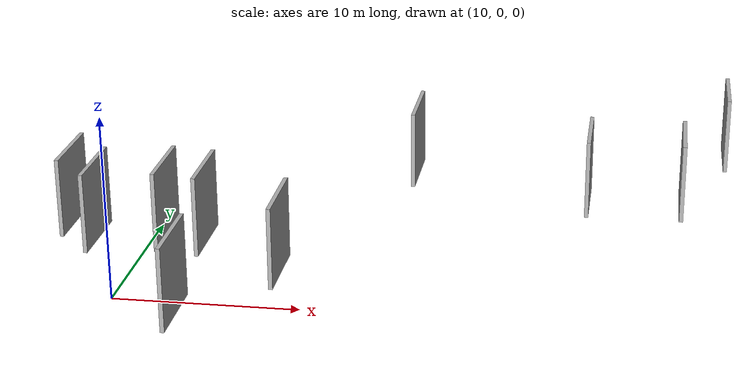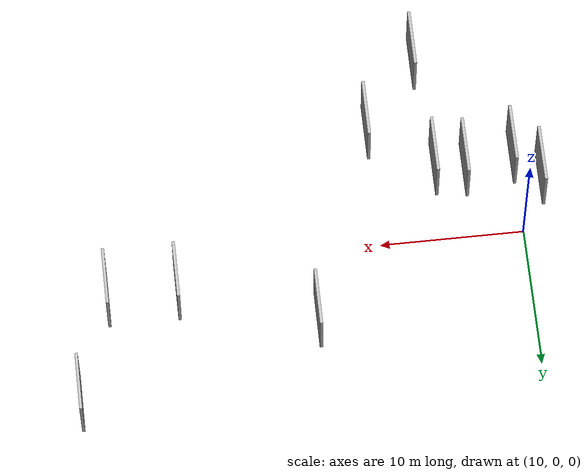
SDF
<sdf version="1.6">
 <world name="default">
  <scene>
   <sky><clouds><speed>12</speed></clouds></sky>
   <ambient>0.4 0.4 0.4 1</ambient>
   <background>0.7 0.7 0.7 1</background>
   <shadows>1</shadows>
  </scene>
  <gravity>0 0 -9.8066</gravity>
  <magnetic_field>6e-06 2.3e-05 -4.2e-05</magnetic_field>
  <physics default="0" name="default_physics" type="ode">
   <ode>
    <solver>
     <type>quick</type>
     <iters>10</iters>
     <sor>1.0</sor>
     <use_dynamic_moi_rescaling>0</use_dynamic_moi_rescaling>
    </solver>
    <constraints>
     <cfm>0</cfm>
     <erp>0.2</erp>
     <contact_max_correcting_vel>100</contact_max_correcting_vel>
     <contact_surface_layer>0.001</contact_surface_layer>
    </constraints>
   </ode>
   <max_step_size>0.004</max_step_size>
   <real_time_factor>1</real_time_factor>
   <real_time_update_rate>250</real_time_update_rate>
  </physics>
  <light name="sun" type="directional">
   <pose>0 0 10 0 0 0</pose>
   <diffuse>0.8 0.8 0.8 1</diffuse>
   <specular>0.2 0.2 0.2 1</specular>
   <attenuation>
    <range>1000</range>
    <constant>0.9</constant>
    <linear>0.01</linear>
    <quadratic>0.001</quadratic>
   </attenuation>
   <direction>-0.5 0.1 -0.9</direction>
  </light>
  <model name="grey_wall_1">
   <static>1</static>
   <pose>16.6594 -11.2913 5.0 0.000000 0.000000 1.570796</pose>
   <link name="link">
    <pose>0 0 2.00 0 0 0</pose>
    <collision name="collision"><geometry><box><size>4.00 0.2 4.00</size></box></geometry></collision>
    <visual name="visual">
     <cast_shadows>0</cast_shadows>
     <geometry><box><size>4.00 0.2 4.00</size></box></geometry>
     <material>
      <script>
       <uri>model://HANNAS_wall/materials/scripts</uri>
       <uri>model://HANNAS_wall/materials/textures</uri>
       <name>vrc/HANNAS_wall</name>
      </script>
     </material>
    </visual>
   </link>
  </model>
  <model name="grey_wall_2">
   <static>1</static>
   <pose>34.3775 4.3862 5.0 0.000000 0.000000 1.570796</pose>
   <link name="link">
    <pose>0 0 2.00 0 0 0</pose>
    <collision name="collision"><geometry><box><size>4.00 0.2 4.00</size></box></geometry></collision>
    <visual name="visual">
     <cast_shadows>0</cast_shadows>
     <geometry><box><size>4.00 0.2 4.00</size></box></geometry>
     <material>
      <script>
       <uri>model://HANNAS_wall/materials/scripts</uri>
       <uri>model://HANNAS_wall/materials/textures</uri>
       <name>vrc/HANNAS_wall</name>
      </script>
     </material>
    </visual>
   </link>
  </model>
  <model name="grey_wall_3">
   <static>1</static>
   <pose>25.1224 7.3914 5.0 0.000000 0.000000 1.570796</pose>
   <link name="link">
    <pose>0 0 2.00 0 0 0</pose>
    <collision name="collision"><geometry><box><size>4.00 0.2 4.00</size></box></geometry></collision>
    <visual name="visual">
     <cast_shadows>0</cast_shadows>
     <geometry><box><size>4.00 0.2 4.00</size></box></geometry>
     <material>
      <script>
       <uri>model://HANNAS_wall/materials/scripts</uri>
       <uri>model://HANNAS_wall/materials/textures</uri>
       <name>vrc/HANNAS_wall</name>
      </script>
     </material>
    </visual>
   </link>
  </model>
  <model name="grey_wall_4">
   <static>1</static>
   <pose>41.5002 11.8184 5.0 0.000000 0.000000 1.570796</pose>
   <link name="link">
    <pose>0 0 2.00 0 0 0</pose>
    <collision name="collision"><geometry><box><size>4.00 0.2 4.00</size></box></geometry></collision>
    <visual name="visual">
     <cast_shadows>0</cast_shadows>
     <geometry><box><size>4.00 0.2 4.00</size></box></geometry>
     <material>
      <script>
       <uri>model://HANNAS_wall/materials/scripts</uri>
       <uri>model://HANNAS_wall/materials/textures</uri>
       <name>vrc/HANNAS_wall</name>
      </script>
     </material>
    </visual>
   </link>
  </model>
  <model name="grey_wall_5">
   <static>1</static>
   <pose>20.3946 -6.2851 5.0 0.000000 0.000000 1.570796</pose>
   <link name="link">
    <pose>0 0 2.00 0 0 0</pose>
    <collision name="collision"><geometry><box><size>4.00 0.2 4.00</size></box></geometry></collision>
    <visual name="visual">
     <cast_shadows>0</cast_shadows>
     <geometry><box><size>4.00 0.2 4.00</size></box></geometry>
     <material>
      <script>
       <uri>model://HANNAS_wall/materials/scripts</uri>
       <uri>model://HANNAS_wall/materials/textures</uri>
       <name>vrc/HANNAS_wall</name>
      </script>
     </material>
    </visual>
   </link>
  </model>
  <model name="grey_wall_6">
   <static>1</static>
   <pose>8.8904 -1.6081 5.0 0.000000 0.000000 1.570796</pose>
   <link name="link">
    <pose>0 0 2.00 0 0 0</pose>
    <collision name="collision"><geometry><box><size>4.00 0.2 4.00</size></box></geometry></collision>
    <visual name="visual">
     <cast_shadows>0</cast_shadows>
     <geometry><box><size>4.00 0.2 4.00</size></box></geometry>
     <material>
      <script>
       <uri>model://HANNAS_wall/materials/scripts</uri>
       <uri>model://HANNAS_wall/materials/textures</uri>
       <name>vrc/HANNAS_wall</name>
      </script>
     </material>
    </visual>
   </link>
  </model>
  <model name="grey_wall_7">
   <static>1</static>
   <pose>39.1297 4.4064 5.0 0.000000 0.000000 1.570796</pose>
   <link name="link">
    <pose>0 0 2.00 0 0 0</pose>
    <collision name="collision"><geometry><box><size>4.00 0.2 4.00</size></box></geometry></collision>
    <visual name="visual">
     <cast_shadows>0</cast_shadows>
     <geometry><box><size>4.00 0.2 4.00</size></box></geometry>
     <material>
      <script>
       <uri>model://HANNAS_wall/materials/scripts</uri>
       <uri>model://HANNAS_wall/materials/textures</uri>
       <name>vrc/HANNAS_wall</name>
      </script>
     </material>
    </visual>
   </link>
  </model>
  <model name="grey_wall_8">
   <static>1</static>
   <pose>16.0604 -3.0682 5.0 0.000000 0.000000 1.570796</pose>
   <link name="link">
    <pose>0 0 2.00 0 0 0</pose>
    <collision name="collision"><geometry><box><size>4.00 0.2 4.00</size></box></geometry></collision>
    <visual name="visual">
     <cast_shadows>0</cast_shadows>
     <geometry><box><size>4.00 0.2 4.00</size></box></geometry>
     <material>
      <script>
       <uri>model://HANNAS_wall/materials/scripts</uri>
       <uri>model://HANNAS_wall/materials/textures</uri>
       <name>vrc/HANNAS_wall</name>
      </script>
     </material>
    </visual>
   </link>
  </model>
  <model name="grey_wall_9">
   <static>1</static>
   <pose>10.6564 -3.3898 5.0 0.000000 0.000000 1.570796</pose>
   <link name="link">
    <pose>0 0 2.00 0 0 0</pose>
    <collision name="collision"><geometry><box><size>4.00 0.2 4.00</size></box></geometry></collision>
    <visual name="visual">
     <cast_shadows>0</cast_shadows>
     <geometry><box><size>4.00 0.2 4.00</size></box></geometry>
     <material>
      <script>
       <uri>model://HANNAS_wall/materials/scripts</uri>
       <uri>model://HANNAS_wall/materials/textures</uri>
       <name>vrc/HANNAS_wall</name>
      </script>
     </material>
    </visual>
   </link>
  </model>
  <model name="grey_wall_10">
   <static>1</static>
   <pose>13.9976 -2.7810 5.0 0.000000 0.000000 1.570796</pose>
   <link name="link">
    <pose>0 0 2.00 0 0 0</pose>
    <collision name="collision"><geometry><box><size>4.00 0.2 4.00</size></box></geometry></collision>
    <visual name="visual">
     <cast_shadows>0</cast_shadows>
     <geometry><box><size>4.00 0.2 4.00</size></box></geometry>
     <material>
      <script>
       <uri>model://HANNAS_wall/materials/scripts</uri>
       <uri>model://HANNAS_wall/materials/textures</uri>
       <name>vrc/HANNAS_wall</name>
      </script>
     </material>
    </visual>
   </link>
  </model>
 </world>
</sdf>
